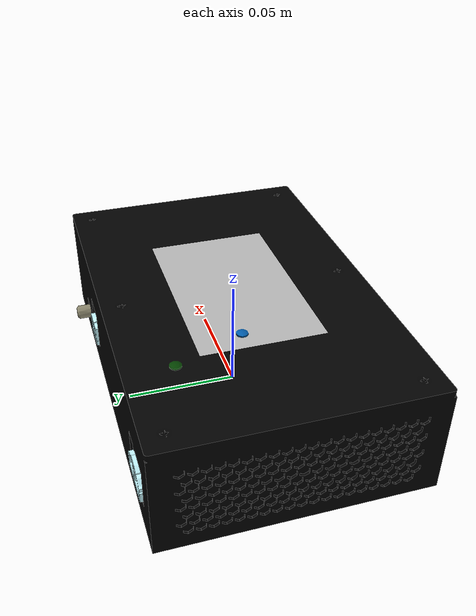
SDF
<?xml version="1.0" ?>
<sdf version="1.6">
  <model name="OC300">
    <static>true</static>
    <link name="link">
      <collision name="collision">
        <geometry>
          <mesh>
            <scale>1 1 1</scale>
            <uri>model://../meshes/OC300.dae</uri>
          </mesh>
        </geometry>
      </collision>
      <visual name="visual">
        <geometry>
          <mesh>
            <scale>1 1 1</scale>
            <uri>model://../meshes/OC300.dae</uri>
          </mesh>
        </geometry>
      </visual>
    </link>
  </model>
</sdf>
